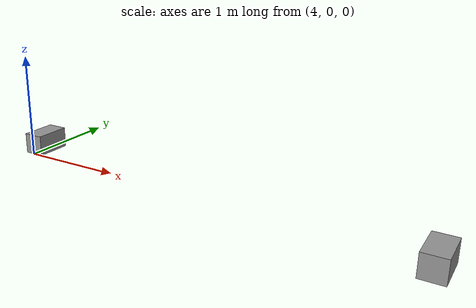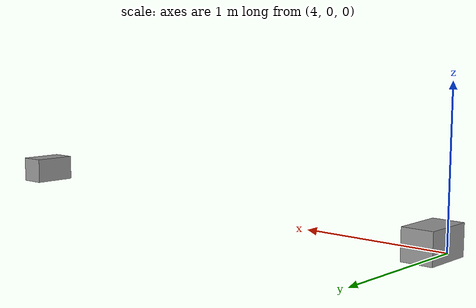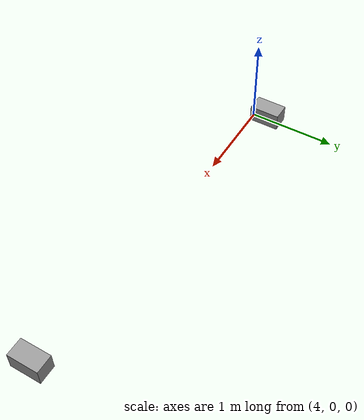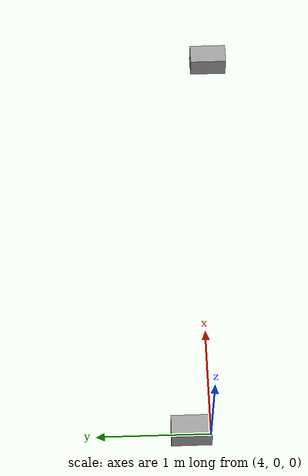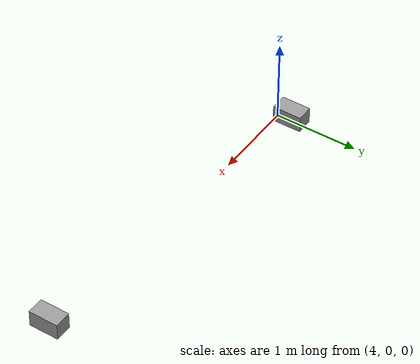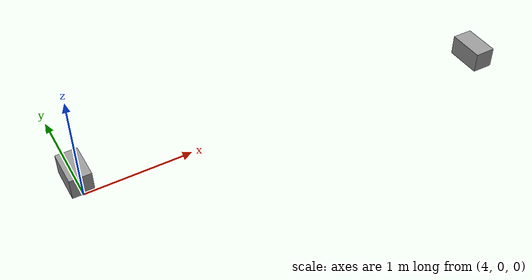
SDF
<?xml version='1.0'?>
<sdf version='1.7'>
  <model name='Racing_Track'>
    <pose>4.05 0 0 0 -0 0</pose>
    <link name='Wall_0'>
      <collision name='Wall_0_Collision'>
        <geometry>
          <box>
            <size>0.35 0.2 0.2</size>
          </box>
        </geometry>
        <pose>0 0 0.1 0 -0 0</pose>
      </collision>
      <visual name='Wall_0_Visual'>
        <pose>0 0 0.1 0 -0 0</pose>
        <geometry>
          <box>
            <size>0.35 0.2 0.2</size>
          </box>
        </geometry>
        <material>
          <script>
            <uri>file://media/materials/scripts/gazebo.material</uri>
            <name>Gazebo/Grey</name>
          </script>
          <ambient>1 1 1 1</ambient>
        </material>
        <meta>
          <layer>0</layer>
        </meta>
      </visual>
      <pose>-0.05 0.175 0 0 -0 -1.5708</pose>
    </link>
    <link name='Wall_2'>
      <collision name='Wall_2_Collision'>
        <geometry>
          <box>
            <size>0.35 0.2 0.2</size>
          </box>
        </geometry>
        <pose>0 0 0.1 0 -0 0</pose>
      </collision>
      <visual name='Wall_2_Visual'>
        <pose>0 0 0.1 0 -0 0</pose>
        <geometry>
          <box>
            <size>0.35 0.2 0.2</size>
          </box>
        </geometry>
        <material>
          <script>
            <uri>file://media/materials/scripts/gazebo.material</uri>
            <name>Gazebo/Grey</name>
          </script>
          <ambient>1 1 1 1</ambient>
        </material>
        <meta>
          <layer>0</layer>
        </meta>
      </visual>
      <pose>3.95 -0.175 0 0 -0 -1.5708</pose>
    </link>
    <static>1</static>
  </model>
</sdf>
